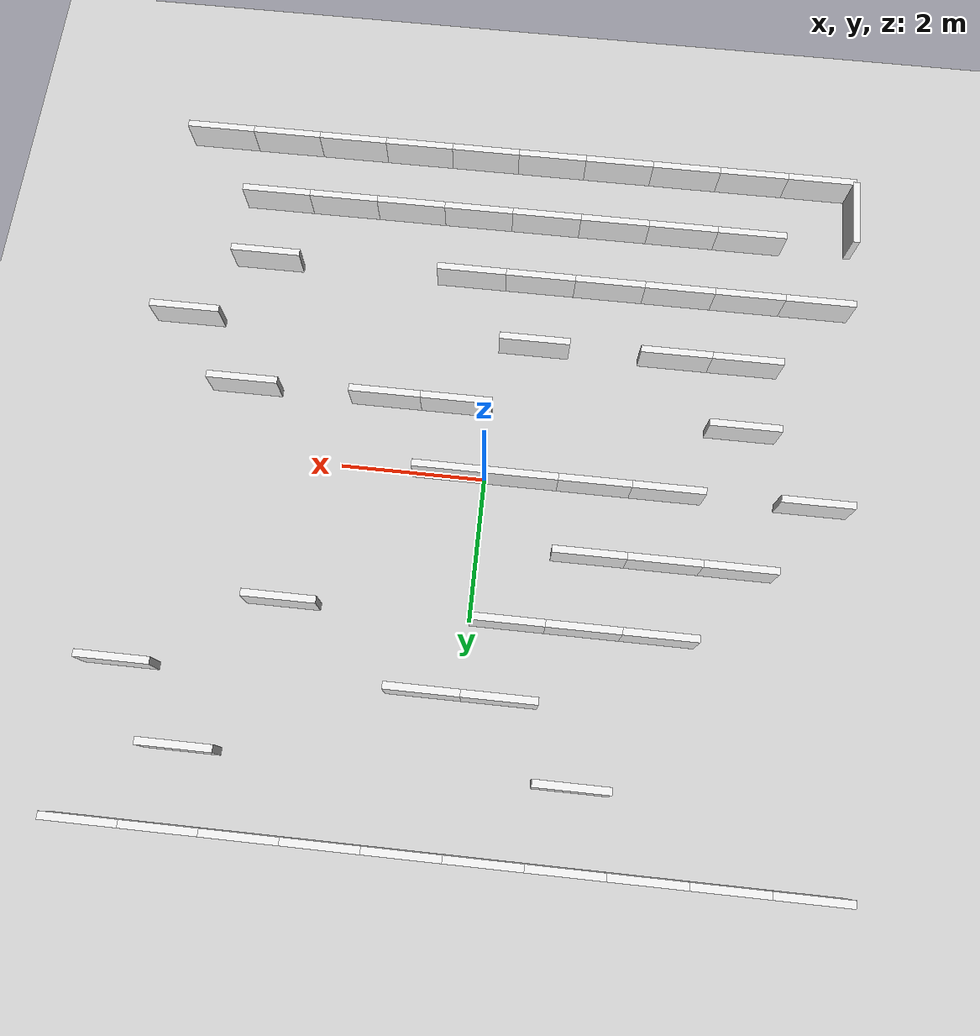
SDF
<sdf version="1.7">
 <world name="default">
  <model name="ground_plane">
   <static>1</static>
   <link name="link">
    <collision name="collision">
     <geometry><plane><normal>0 0 1</normal><size>100 100</size></plane></geometry>
     <surface><friction><ode><mu>100</mu><mu2>50</mu2></ode></friction></surface>
    </collision>
    <visual name="visual">
     <cast_shadows>0</cast_shadows>
     <geometry><plane><normal>0 0 1</normal><size>100 100</size></plane></geometry>
     <material>
      <script><uri>file://media/materials/scripts/gazebo.material</uri><name>Gazebo/Grey</name></script>
     </material>
    </visual>
   </link>
  </model>
  <model name="wall_-4.5_-5">
   <link name="wall_link_-4.5_-5">
    <collision name="wall_collision_-4.5_-5"><geometry><box><size>1 0.1 0.5</size></box></geometry></collision>
    <visual name="wall_visual_-4.5_-5">
     <geometry><box><size>1 0.1 0.5</size></box></geometry>
     <material>
      <script><uri>file://media/materials/scripts/gazebo.material</uri><name>Gazebo/White</name></script>
     </material>
    </visual>
    <pose>-4.5 -5 0.25 0 0 0</pose>
   </link>
   <static>true</static>
  </model>
  <model name="wall_-3.5_-5">
   <link name="wall_link_-3.5_-5">
    <collision name="wall_collision_-3.5_-5"><geometry><box><size>1 0.1 0.5</size></box></geometry></collision>
    <visual name="wall_visual_-3.5_-5">
     <geometry><box><size>1 0.1 0.5</size></box></geometry>
     <material>
      <script><uri>file://media/materials/scripts/gazebo.material</uri><name>Gazebo/White</name></script>
     </material>
    </visual>
    <pose>-3.5 -5 0.25 0 0 0</pose>
   </link>
   <static>true</static>
  </model>
  <model name="wall_-2.5_-5">
   <link name="wall_link_-2.5_-5">
    <collision name="wall_collision_-2.5_-5"><geometry><box><size>1 0.1 0.5</size></box></geometry></collision>
    <visual name="wall_visual_-2.5_-5">
     <geometry><box><size>1 0.1 0.5</size></box></geometry>
     <material>
      <script><uri>file://media/materials/scripts/gazebo.material</uri><name>Gazebo/White</name></script>
     </material>
    </visual>
    <pose>-2.5 -5 0.25 0 0 0</pose>
   </link>
   <static>true</static>
  </model>
  <model name="wall_-1.5_-5">
   <link name="wall_link_-1.5_-5">
    <collision name="wall_collision_-1.5_-5"><geometry><box><size>1 0.1 0.5</size></box></geometry></collision>
    <visual name="wall_visual_-1.5_-5">
     <geometry><box><size>1 0.1 0.5</size></box></geometry>
     <material>
      <script><uri>file://media/materials/scripts/gazebo.material</uri><name>Gazebo/White</name></script>
     </material>
    </visual>
    <pose>-1.5 -5 0.25 0 0 0</pose>
   </link>
   <static>true</static>
  </model>
  <model name="wall_-0.5_-5">
   <link name="wall_link_-0.5_-5">
    <collision name="wall_collision_-0.5_-5"><geometry><box><size>1 0.1 0.5</size></box></geometry></collision>
    <visual name="wall_visual_-0.5_-5">
     <geometry><box><size>1 0.1 0.5</size></box></geometry>
     <material>
      <script><uri>file://media/materials/scripts/gazebo.material</uri><name>Gazebo/White</name></script>
     </material>
    </visual>
    <pose>-0.5 -5 0.25 0 0 0</pose>
   </link>
   <static>true</static>
  </model>
  <model name="wall_0.5_-5">
   <link name="wall_link_0.5_-5">
    <collision name="wall_collision_0.5_-5"><geometry><box><size>1 0.1 0.5</size></box></geometry></collision>
    <visual name="wall_visual_0.5_-5">
     <geometry><box><size>1 0.1 0.5</size></box></geometry>
     <material>
      <script><uri>file://media/materials/scripts/gazebo.material</uri><name>Gazebo/White</name></script>
     </material>
    </visual>
    <pose>0.5 -5 0.25 0 0 0</pose>
   </link>
   <static>true</static>
  </model>
  <model name="wall_1.5_-5">
   <link name="wall_link_1.5_-5">
    <collision name="wall_collision_1.5_-5"><geometry><box><size>1 0.1 0.5</size></box></geometry></collision>
    <visual name="wall_visual_1.5_-5">
     <geometry><box><size>1 0.1 0.5</size></box></geometry>
     <material>
      <script><uri>file://media/materials/scripts/gazebo.material</uri><name>Gazebo/White</name></script>
     </material>
    </visual>
    <pose>1.5 -5 0.25 0 0 0</pose>
   </link>
   <static>true</static>
  </model>
  <model name="wall_2.5_-5">
   <link name="wall_link_2.5_-5">
    <collision name="wall_collision_2.5_-5"><geometry><box><size>1 0.1 0.5</size></box></geometry></collision>
    <visual name="wall_visual_2.5_-5">
     <geometry><box><size>1 0.1 0.5</size></box></geometry>
     <material>
      <script><uri>file://media/materials/scripts/gazebo.material</uri><name>Gazebo/White</name></script>
     </material>
    </visual>
    <pose>2.5 -5 0.25 0 0 0</pose>
   </link>
   <static>true</static>
  </model>
  <model name="wall_3.5_-5">
   <link name="wall_link_3.5_-5">
    <collision name="wall_collision_3.5_-5"><geometry><box><size>1 0.1 0.5</size></box></geometry></collision>
    <visual name="wall_visual_3.5_-5">
     <geometry><box><size>1 0.1 0.5</size></box></geometry>
     <material>
      <script><uri>file://media/materials/scripts/gazebo.material</uri><name>Gazebo/White</name></script>
     </material>
    </visual>
    <pose>3.5 -5 0.25 0 0 0</pose>
   </link>
   <static>true</static>
  </model>
  <model name="wall_4.5_-5">
   <link name="wall_link_4.5_-5">
    <collision name="wall_collision_4.5_-5"><geometry><box><size>1 0.1 0.5</size></box></geometry></collision>
    <visual name="wall_visual_4.5_-5">
     <geometry><box><size>1 0.1 0.5</size></box></geometry>
     <material>
      <script><uri>file://media/materials/scripts/gazebo.material</uri><name>Gazebo/White</name></script>
     </material>
    </visual>
    <pose>4.5 -5 0.25 0 0 0</pose>
   </link>
   <static>true</static>
  </model>
  <model name="wall_-3.5_-4">
   <link name="wall_link_-3.5_-4">
    <collision name="wall_collision_-3.5_-4"><geometry><box><size>1 0.1 0.5</size></box></geometry></collision>
    <visual name="wall_visual_-3.5_-4">
     <geometry><box><size>1 0.1 0.5</size></box></geometry>
     <material>
      <script><uri>file://media/materials/scripts/gazebo.material</uri><name>Gazebo/White</name></script>
     </material>
    </visual>
    <pose>-3.5 -4 0.25 0 0 0</pose>
   </link>
   <static>true</static>
  </model>
  <model name="wall_-2.5_-4">
   <link name="wall_link_-2.5_-4">
    <collision name="wall_collision_-2.5_-4"><geometry><box><size>1 0.1 0.5</size></box></geometry></collision>
    <visual name="wall_visual_-2.5_-4">
     <geometry><box><size>1 0.1 0.5</size></box></geometry>
     <material>
      <script><uri>file://media/materials/scripts/gazebo.material</uri><name>Gazebo/White</name></script>
     </material>
    </visual>
    <pose>-2.5 -4 0.25 0 0 0</pose>
   </link>
   <static>true</static>
  </model>
  <model name="wall_-1.5_-4">
   <link name="wall_link_-1.5_-4">
    <collision name="wall_collision_-1.5_-4"><geometry><box><size>1 0.1 0.5</size></box></geometry></collision>
    <visual name="wall_visual_-1.5_-4">
     <geometry><box><size>1 0.1 0.5</size></box></geometry>
     <material>
      <script><uri>file://media/materials/scripts/gazebo.material</uri><name>Gazebo/White</name></script>
     </material>
    </visual>
    <pose>-1.5 -4 0.25 0 0 0</pose>
   </link>
   <static>true</static>
  </model>
  <model name="wall_-0.5_-4">
   <link name="wall_link_-0.5_-4">
    <collision name="wall_collision_-0.5_-4"><geometry><box><size>1 0.1 0.5</size></box></geometry></collision>
    <visual name="wall_visual_-0.5_-4">
     <geometry><box><size>1 0.1 0.5</size></box></geometry>
     <material>
      <script><uri>file://media/materials/scripts/gazebo.material</uri><name>Gazebo/White</name></script>
     </material>
    </visual>
    <pose>-0.5 -4 0.25 0 0 0</pose>
   </link>
   <static>true</static>
  </model>
  <model name="wall_0.5_-4">
   <link name="wall_link_0.5_-4">
    <collision name="wall_collision_0.5_-4"><geometry><box><size>1 0.1 0.5</size></box></geometry></collision>
    <visual name="wall_visual_0.5_-4">
     <geometry><box><size>1 0.1 0.5</size></box></geometry>
     <material>
      <script><uri>file://media/materials/scripts/gazebo.material</uri><name>Gazebo/White</name></script>
     </material>
    </visual>
    <pose>0.5 -4 0.25 0 0 0</pose>
   </link>
   <static>true</static>
  </model>
  <model name="wall_1.5_-4">
   <link name="wall_link_1.5_-4">
    <collision name="wall_collision_1.5_-4"><geometry><box><size>1 0.1 0.5</size></box></geometry></collision>
    <visual name="wall_visual_1.5_-4">
     <geometry><box><size>1 0.1 0.5</size></box></geometry>
     <material>
      <script><uri>file://media/materials/scripts/gazebo.material</uri><name>Gazebo/White</name></script>
     </material>
    </visual>
    <pose>1.5 -4 0.25 0 0 0</pose>
   </link>
   <static>true</static>
  </model>
  <model name="wall_2.5_-4">
   <link name="wall_link_2.5_-4">
    <collision name="wall_collision_2.5_-4"><geometry><box><size>1 0.1 0.5</size></box></geometry></collision>
    <visual name="wall_visual_2.5_-4">
     <geometry><box><size>1 0.1 0.5</size></box></geometry>
     <material>
      <script><uri>file://media/materials/scripts/gazebo.material</uri><name>Gazebo/White</name></script>
     </material>
    </visual>
    <pose>2.5 -4 0.25 0 0 0</pose>
   </link>
   <static>true</static>
  </model>
  <model name="wall_3.5_-4">
   <link name="wall_link_3.5_-4">
    <collision name="wall_collision_3.5_-4"><geometry><box><size>1 0.1 0.5</size></box></geometry></collision>
    <visual name="wall_visual_3.5_-4">
     <geometry><box><size>1 0.1 0.5</size></box></geometry>
     <material>
      <script><uri>file://media/materials/scripts/gazebo.material</uri><name>Gazebo/White</name></script>
     </material>
    </visual>
    <pose>3.5 -4 0.25 0 0 0</pose>
   </link>
   <static>true</static>
  </model>
  <model name="wall_-4.5_-3">
   <link name="wall_link_-4.5_-3">
    <collision name="wall_collision_-4.5_-3"><geometry><box><size>1 0.1 0.5</size></box></geometry></collision>
    <visual name="wall_visual_-4.5_-3">
     <geometry><box><size>1 0.1 0.5</size></box></geometry>
     <material>
      <script><uri>file://media/materials/scripts/gazebo.material</uri><name>Gazebo/White</name></script>
     </material>
    </visual>
    <pose>-4.5 -3 0.25 0 0 0</pose>
   </link>
   <static>true</static>
  </model>
  <model name="wall_-3.5_-3">
   <link name="wall_link_-3.5_-3">
    <collision name="wall_collision_-3.5_-3"><geometry><box><size>1 0.1 0.5</size></box></geometry></collision>
    <visual name="wall_visual_-3.5_-3">
     <geometry><box><size>1 0.1 0.5</size></box></geometry>
     <material>
      <script><uri>file://media/materials/scripts/gazebo.material</uri><name>Gazebo/White</name></script>
     </material>
    </visual>
    <pose>-3.5 -3 0.25 0 0 0</pose>
   </link>
   <static>true</static>
  </model>
  <model name="wall_-2.5_-3">
   <link name="wall_link_-2.5_-3">
    <collision name="wall_collision_-2.5_-3"><geometry><box><size>1 0.1 0.5</size></box></geometry></collision>
    <visual name="wall_visual_-2.5_-3">
     <geometry><box><size>1 0.1 0.5</size></box></geometry>
     <material>
      <script><uri>file://media/materials/scripts/gazebo.material</uri><name>Gazebo/White</name></script>
     </material>
    </visual>
    <pose>-2.5 -3 0.25 0 0 0</pose>
   </link>
   <static>true</static>
  </model>
  <model name="wall_-1.5_-3">
   <link name="wall_link_-1.5_-3">
    <collision name="wall_collision_-1.5_-3"><geometry><box><size>1 0.1 0.5</size></box></geometry></collision>
    <visual name="wall_visual_-1.5_-3">
     <geometry><box><size>1 0.1 0.5</size></box></geometry>
     <material>
      <script><uri>file://media/materials/scripts/gazebo.material</uri><name>Gazebo/White</name></script>
     </material>
    </visual>
    <pose>-1.5 -3 0.25 0 0 0</pose>
   </link>
   <static>true</static>
  </model>
  <model name="wall_-0.5_-3">
   <link name="wall_link_-0.5_-3">
    <collision name="wall_collision_-0.5_-3"><geometry><box><size>1 0.1 0.5</size></box></geometry></collision>
    <visual name="wall_visual_-0.5_-3">
     <geometry><box><size>1 0.1 0.5</size></box></geometry>
     <material>
      <script><uri>file://media/materials/scripts/gazebo.material</uri><name>Gazebo/White</name></script>
     </material>
    </visual>
    <pose>-0.5 -3 0.25 0 0 0</pose>
   </link>
   <static>true</static>
  </model>
  <model name="wall_0.5_-3">
   <link name="wall_link_0.5_-3">
    <collision name="wall_collision_0.5_-3"><geometry><box><size>1 0.1 0.5</size></box></geometry></collision>
    <visual name="wall_visual_0.5_-3">
     <geometry><box><size>1 0.1 0.5</size></box></geometry>
     <material>
      <script><uri>file://media/materials/scripts/gazebo.material</uri><name>Gazebo/White</name></script>
     </material>
    </visual>
    <pose>0.5 -3 0.25 0 0 0</pose>
   </link>
   <static>true</static>
  </model>
  <model name="wall_3.5_-3">
   <link name="wall_link_3.5_-3">
    <collision name="wall_collision_3.5_-3"><geometry><box><size>1 0.1 0.5</size></box></geometry></collision>
    <visual name="wall_visual_3.5_-3">
     <geometry><box><size>1 0.1 0.5</size></box></geometry>
     <material>
      <script><uri>file://media/materials/scripts/gazebo.material</uri><name>Gazebo/White</name></script>
     </material>
    </visual>
    <pose>3.5 -3 0.25 0 0 0</pose>
   </link>
   <static>true</static>
  </model>
  <model name="wall_-3.5_-2">
   <link name="wall_link_-3.5_-2">
    <collision name="wall_collision_-3.5_-2"><geometry><box><size>1 0.1 0.5</size></box></geometry></collision>
    <visual name="wall_visual_-3.5_-2">
     <geometry><box><size>1 0.1 0.5</size></box></geometry>
     <material>
      <script><uri>file://media/materials/scripts/gazebo.material</uri><name>Gazebo/White</name></script>
     </material>
    </visual>
    <pose>-3.5 -2 0.25 0 0 0</pose>
   </link>
   <static>true</static>
  </model>
  <model name="wall_-2.5_-2">
   <link name="wall_link_-2.5_-2">
    <collision name="wall_collision_-2.5_-2"><geometry><box><size>1 0.1 0.5</size></box></geometry></collision>
    <visual name="wall_visual_-2.5_-2">
     <geometry><box><size>1 0.1 0.5</size></box></geometry>
     <material>
      <script><uri>file://media/materials/scripts/gazebo.material</uri><name>Gazebo/White</name></script>
     </material>
    </visual>
    <pose>-2.5 -2 0.25 0 0 0</pose>
   </link>
   <static>true</static>
  </model>
  <model name="wall_-0.5_-2">
   <link name="wall_link_-0.5_-2">
    <collision name="wall_collision_-0.5_-2"><geometry><box><size>1 0.1 0.5</size></box></geometry></collision>
    <visual name="wall_visual_-0.5_-2">
     <geometry><box><size>1 0.1 0.5</size></box></geometry>
     <material>
      <script><uri>file://media/materials/scripts/gazebo.material</uri><name>Gazebo/White</name></script>
     </material>
    </visual>
    <pose>-0.5 -2 0.25 0 0 0</pose>
   </link>
   <static>true</static>
  </model>
  <model name="wall_4.5_-2">
   <link name="wall_link_4.5_-2">
    <collision name="wall_collision_4.5_-2"><geometry><box><size>1 0.1 0.5</size></box></geometry></collision>
    <visual name="wall_visual_4.5_-2">
     <geometry><box><size>1 0.1 0.5</size></box></geometry>
     <material>
      <script><uri>file://media/materials/scripts/gazebo.material</uri><name>Gazebo/White</name></script>
     </material>
    </visual>
    <pose>4.5 -2 0.25 0 0 0</pose>
   </link>
   <static>true</static>
  </model>
  <model name="wall_-3.5_-1">
   <link name="wall_link_-3.5_-1">
    <collision name="wall_collision_-3.5_-1"><geometry><box><size>1 0.1 0.5</size></box></geometry></collision>
    <visual name="wall_visual_-3.5_-1">
     <geometry><box><size>1 0.1 0.5</size></box></geometry>
     <material>
      <script><uri>file://media/materials/scripts/gazebo.material</uri><name>Gazebo/White</name></script>
     </material>
    </visual>
    <pose>-3.5 -1 0.25 0 0 0</pose>
   </link>
   <static>true</static>
  </model>
  <model name="wall_0.5_-1">
   <link name="wall_link_0.5_-1">
    <collision name="wall_collision_0.5_-1"><geometry><box><size>1 0.1 0.5</size></box></geometry></collision>
    <visual name="wall_visual_0.5_-1">
     <geometry><box><size>1 0.1 0.5</size></box></geometry>
     <material>
      <script><uri>file://media/materials/scripts/gazebo.material</uri><name>Gazebo/White</name></script>
     </material>
    </visual>
    <pose>0.5 -1 0.25 0 0 0</pose>
   </link>
   <static>true</static>
  </model>
  <model name="wall_1.5_-1">
   <link name="wall_link_1.5_-1">
    <collision name="wall_collision_1.5_-1"><geometry><box><size>1 0.1 0.5</size></box></geometry></collision>
    <visual name="wall_visual_1.5_-1">
     <geometry><box><size>1 0.1 0.5</size></box></geometry>
     <material>
      <script><uri>file://media/materials/scripts/gazebo.material</uri><name>Gazebo/White</name></script>
     </material>
    </visual>
    <pose>1.5 -1 0.25 0 0 0</pose>
   </link>
   <static>true</static>
  </model>
  <model name="wall_3.5_-1">
   <link name="wall_link_3.5_-1">
    <collision name="wall_collision_3.5_-1"><geometry><box><size>1 0.1 0.5</size></box></geometry></collision>
    <visual name="wall_visual_3.5_-1">
     <geometry><box><size>1 0.1 0.5</size></box></geometry>
     <material>
      <script><uri>file://media/materials/scripts/gazebo.material</uri><name>Gazebo/White</name></script>
     </material>
    </visual>
    <pose>3.5 -1 0.25 0 0 0</pose>
   </link>
   <static>true</static>
  </model>
  <model name="wall_-4.5_0">
   <link name="wall_link_-4.5_0">
    <collision name="wall_collision_-4.5_0"><geometry><box><size>1 0.1 0.5</size></box></geometry></collision>
    <visual name="wall_visual_-4.5_0">
     <geometry><box><size>1 0.1 0.5</size></box></geometry>
     <material>
      <script><uri>file://media/materials/scripts/gazebo.material</uri><name>Gazebo/White</name></script>
     </material>
    </visual>
    <pose>-4.5 0 0.25 0 0 0</pose>
   </link>
   <static>true</static>
  </model>
  <model name="wall_-2.5_0">
   <link name="wall_link_-2.5_0">
    <collision name="wall_collision_-2.5_0"><geometry><box><size>1 0.1 0.5</size></box></geometry></collision>
    <visual name="wall_visual_-2.5_0">
     <geometry><box><size>1 0.1 0.5</size></box></geometry>
     <material>
      <script><uri>file://media/materials/scripts/gazebo.material</uri><name>Gazebo/White</name></script>
     </material>
    </visual>
    <pose>-2.5 0 0.25 0 0 0</pose>
   </link>
   <static>true</static>
  </model>
  <model name="wall_-1.5_0">
   <link name="wall_link_-1.5_0">
    <collision name="wall_collision_-1.5_0"><geometry><box><size>1 0.1 0.5</size></box></geometry></collision>
    <visual name="wall_visual_-1.5_0">
     <geometry><box><size>1 0.1 0.5</size></box></geometry>
     <material>
      <script><uri>file://media/materials/scripts/gazebo.material</uri><name>Gazebo/White</name></script>
     </material>
    </visual>
    <pose>-1.5 0 0.25 0 0 0</pose>
   </link>
   <static>true</static>
  </model>
  <model name="wall_-0.5_0">
   <link name="wall_link_-0.5_0">
    <collision name="wall_collision_-0.5_0"><geometry><box><size>1 0.1 0.5</size></box></geometry></collision>
    <visual name="wall_visual_-0.5_0">
     <geometry><box><size>1 0.1 0.5</size></box></geometry>
     <material>
      <script><uri>file://media/materials/scripts/gazebo.material</uri><name>Gazebo/White</name></script>
     </material>
    </visual>
    <pose>-0.5 0 0.25 0 0 0</pose>
   </link>
   <static>true</static>
  </model>
  <model name="wall_0.5_0">
   <link name="wall_link_0.5_0">
    <collision name="wall_collision_0.5_0"><geometry><box><size>1 0.1 0.5</size></box></geometry></collision>
    <visual name="wall_visual_0.5_0">
     <geometry><box><size>1 0.1 0.5</size></box></geometry>
     <material>
      <script><uri>file://media/materials/scripts/gazebo.material</uri><name>Gazebo/White</name></script>
     </material>
    </visual>
    <pose>0.5 0 0.25 0 0 0</pose>
   </link>
   <static>true</static>
  </model>
  <model name="wall_-3.5_1">
   <link name="wall_link_-3.5_1">
    <collision name="wall_collision_-3.5_1"><geometry><box><size>1 0.1 0.5</size></box></geometry></collision>
    <visual name="wall_visual_-3.5_1">
     <geometry><box><size>1 0.1 0.5</size></box></geometry>
     <material>
      <script><uri>file://media/materials/scripts/gazebo.material</uri><name>Gazebo/White</name></script>
     </material>
    </visual>
    <pose>-3.5 1 0.25 0 0 0</pose>
   </link>
   <static>true</static>
  </model>
  <model name="wall_-2.5_1">
   <link name="wall_link_-2.5_1">
    <collision name="wall_collision_-2.5_1"><geometry><box><size>1 0.1 0.5</size></box></geometry></collision>
    <visual name="wall_visual_-2.5_1">
     <geometry><box><size>1 0.1 0.5</size></box></geometry>
     <material>
      <script><uri>file://media/materials/scripts/gazebo.material</uri><name>Gazebo/White</name></script>
     </material>
    </visual>
    <pose>-2.5 1 0.25 0 0 0</pose>
   </link>
   <static>true</static>
  </model>
  <model name="wall_-1.5_1">
   <link name="wall_link_-1.5_1">
    <collision name="wall_collision_-1.5_1"><geometry><box><size>1 0.1 0.5</size></box></geometry></collision>
    <visual name="wall_visual_-1.5_1">
     <geometry><box><size>1 0.1 0.5</size></box></geometry>
     <material>
      <script><uri>file://media/materials/scripts/gazebo.material</uri><name>Gazebo/White</name></script>
     </material>
    </visual>
    <pose>-1.5 1 0.25 0 0 0</pose>
   </link>
   <static>true</static>
  </model>
  <model name="wall_-2.5_2">
   <link name="wall_link_-2.5_2">
    <collision name="wall_collision_-2.5_2"><geometry><box><size>1 0.1 0.5</size></box></geometry></collision>
    <visual name="wall_visual_-2.5_2">
     <geometry><box><size>1 0.1 0.5</size></box></geometry>
     <material>
      <script><uri>file://media/materials/scripts/gazebo.material</uri><name>Gazebo/White</name></script>
     </material>
    </visual>
    <pose>-2.5 2 0.25 0 0 0</pose>
   </link>
   <static>true</static>
  </model>
  <model name="wall_-1.5_2">
   <link name="wall_link_-1.5_2">
    <collision name="wall_collision_-1.5_2"><geometry><box><size>1 0.1 0.5</size></box></geometry></collision>
    <visual name="wall_visual_-1.5_2">
     <geometry><box><size>1 0.1 0.5</size></box></geometry>
     <material>
      <script><uri>file://media/materials/scripts/gazebo.material</uri><name>Gazebo/White</name></script>
     </material>
    </visual>
    <pose>-1.5 2 0.25 0 0 0</pose>
   </link>
   <static>true</static>
  </model>
  <model name="wall_-0.5_2">
   <link name="wall_link_-0.5_2">
    <collision name="wall_collision_-0.5_2"><geometry><box><size>1 0.1 0.5</size></box></geometry></collision>
    <visual name="wall_visual_-0.5_2">
     <geometry><box><size>1 0.1 0.5</size></box></geometry>
     <material>
      <script><uri>file://media/materials/scripts/gazebo.material</uri><name>Gazebo/White</name></script>
     </material>
    </visual>
    <pose>-0.5 2 0.25 0 0 0</pose>
   </link>
   <static>true</static>
  </model>
  <model name="wall_2.5_2">
   <link name="wall_link_2.5_2">
    <collision name="wall_collision_2.5_2"><geometry><box><size>1 0.1 0.5</size></box></geometry></collision>
    <visual name="wall_visual_2.5_2">
     <geometry><box><size>1 0.1 0.5</size></box></geometry>
     <material>
      <script><uri>file://media/materials/scripts/gazebo.material</uri><name>Gazebo/White</name></script>
     </material>
    </visual>
    <pose>2.5 2 0.25 0 0 0</pose>
   </link>
   <static>true</static>
  </model>
  <model name="wall_-0.5_3">
   <link name="wall_link_-0.5_3">
    <collision name="wall_collision_-0.5_3"><geometry><box><size>1 0.1 0.5</size></box></geometry></collision>
    <visual name="wall_visual_-0.5_3">
     <geometry><box><size>1 0.1 0.5</size></box></geometry>
     <material>
      <script><uri>file://media/materials/scripts/gazebo.material</uri><name>Gazebo/White</name></script>
     </material>
    </visual>
    <pose>-0.5 3 0.25 0 0 0</pose>
   </link>
   <static>true</static>
  </model>
  <model name="wall_0.5_3">
   <link name="wall_link_0.5_3">
    <collision name="wall_collision_0.5_3"><geometry><box><size>1 0.1 0.5</size></box></geometry></collision>
    <visual name="wall_visual_0.5_3">
     <geometry><box><size>1 0.1 0.5</size></box></geometry>
     <material>
      <script><uri>file://media/materials/scripts/gazebo.material</uri><name>Gazebo/White</name></script>
     </material>
    </visual>
    <pose>0.5 3 0.25 0 0 0</pose>
   </link>
   <static>true</static>
  </model>
  <model name="wall_4.5_3">
   <link name="wall_link_4.5_3">
    <collision name="wall_collision_4.5_3"><geometry><box><size>1 0.1 0.5</size></box></geometry></collision>
    <visual name="wall_visual_4.5_3">
     <geometry><box><size>1 0.1 0.5</size></box></geometry>
     <material>
      <script><uri>file://media/materials/scripts/gazebo.material</uri><name>Gazebo/White</name></script>
     </material>
    </visual>
    <pose>4.5 3 0.25 0 0 0</pose>
   </link>
   <static>true</static>
  </model>
  <model name="wall_-1.5_4">
   <link name="wall_link_-1.5_4">
    <collision name="wall_collision_-1.5_4"><geometry><box><size>1 0.1 0.5</size></box></geometry></collision>
    <visual name="wall_visual_-1.5_4">
     <geometry><box><size>1 0.1 0.5</size></box></geometry>
     <material>
      <script><uri>file://media/materials/scripts/gazebo.material</uri><name>Gazebo/White</name></script>
     </material>
    </visual>
    <pose>-1.5 4 0.25 0 0 0</pose>
   </link>
   <static>true</static>
  </model>
  <model name="wall_3.5_4">
   <link name="wall_link_3.5_4">
    <collision name="wall_collision_3.5_4"><geometry><box><size>1 0.1 0.5</size></box></geometry></collision>
    <visual name="wall_visual_3.5_4">
     <geometry><box><size>1 0.1 0.5</size></box></geometry>
     <material>
      <script><uri>file://media/materials/scripts/gazebo.material</uri><name>Gazebo/White</name></script>
     </material>
    </visual>
    <pose>3.5 4 0.25 0 0 0</pose>
   </link>
   <static>true</static>
  </model>
  <model name="wall_-4.5_5">
   <link name="wall_link_-4.5_5">
    <collision name="wall_collision_-4.5_5"><geometry><box><size>1 0.1 0.5</size></box></geometry></collision>
    <visual name="wall_visual_-4.5_5">
     <geometry><box><size>1 0.1 0.5</size></box></geometry>
     <material>
      <script><uri>file://media/materials/scripts/gazebo.material</uri><name>Gazebo/White</name></script>
     </material>
    </visual>
    <pose>-4.5 5 0.25 0 0 0</pose>
   </link>
   <static>true</static>
  </model>
  <model name="wall_-3.5_5">
   <link name="wall_link_-3.5_5">
    <collision name="wall_collision_-3.5_5"><geometry><box><size>1 0.1 0.5</size></box></geometry></collision>
    <visual name="wall_visual_-3.5_5">
     <geometry><box><size>1 0.1 0.5</size></box></geometry>
     <material>
      <script><uri>file://media/materials/scripts/gazebo.material</uri><name>Gazebo/White</name></script>
     </material>
    </visual>
    <pose>-3.5 5 0.25 0 0 0</pose>
   </link>
   <static>true</static>
  </model>
  <model name="wall_-2.5_5">
   <link name="wall_link_-2.5_5">
    <collision name="wall_collision_-2.5_5"><geometry><box><size>1 0.1 0.5</size></box></geometry></collision>
    <visual name="wall_visual_-2.5_5">
     <geometry><box><size>1 0.1 0.5</size></box></geometry>
     <material>
      <script><uri>file://media/materials/scripts/gazebo.material</uri><name>Gazebo/White</name></script>
     </material>
    </visual>
    <pose>-2.5 5 0.25 0 0 0</pose>
   </link>
   <static>true</static>
  </model>
  <model name="wall_-1.5_5">
   <link name="wall_link_-1.5_5">
    <collision name="wall_collision_-1.5_5"><geometry><box><size>1 0.1 0.5</size></box></geometry></collision>
    <visual name="wall_visual_-1.5_5">
     <geometry><box><size>1 0.1 0.5</size></box></geometry>
     <material>
      <script><uri>file://media/materials/scripts/gazebo.material</uri><name>Gazebo/White</name></script>
     </material>
    </visual>
    <pose>-1.5 5 0.25 0 0 0</pose>
   </link>
   <static>true</static>
  </model>
  <model name="wall_-0.5_5">
   <link name="wall_link_-0.5_5">
    <collision name="wall_collision_-0.5_5"><geometry><box><size>1 0.1 0.5</size></box></geometry></collision>
    <visual name="wall_visual_-0.5_5">
     <geometry><box><size>1 0.1 0.5</size></box></geometry>
     <material>
      <script><uri>file://media/materials/scripts/gazebo.material</uri><name>Gazebo/White</name></script>
     </material>
    </visual>
    <pose>-0.5 5 0.25 0 0 0</pose>
   </link>
   <static>true</static>
  </model>
  <model name="wall_0.5_5">
   <link name="wall_link_0.5_5">
    <collision name="wall_collision_0.5_5"><geometry><box><size>1 0.1 0.5</size></box></geometry></collision>
    <visual name="wall_visual_0.5_5">
     <geometry><box><size>1 0.1 0.5</size></box></geometry>
     <material>
      <script><uri>file://media/materials/scripts/gazebo.material</uri><name>Gazebo/White</name></script>
     </material>
    </visual>
    <pose>0.5 5 0.25 0 0 0</pose>
   </link>
   <static>true</static>
  </model>
  <model name="wall_1.5_5">
   <link name="wall_link_1.5_5">
    <collision name="wall_collision_1.5_5"><geometry><box><size>1 0.1 0.5</size></box></geometry></collision>
    <visual name="wall_visual_1.5_5">
     <geometry><box><size>1 0.1 0.5</size></box></geometry>
     <material>
      <script><uri>file://media/materials/scripts/gazebo.material</uri><name>Gazebo/White</name></script>
     </material>
    </visual>
    <pose>1.5 5 0.25 0 0 0</pose>
   </link>
   <static>true</static>
  </model>
  <model name="wall_2.5_5">
   <link name="wall_link_2.5_5">
    <collision name="wall_collision_2.5_5"><geometry><box><size>1 0.1 0.5</size></box></geometry></collision>
    <visual name="wall_visual_2.5_5">
     <geometry><box><size>1 0.1 0.5</size></box></geometry>
     <material>
      <script><uri>file://media/materials/scripts/gazebo.material</uri><name>Gazebo/White</name></script>
     </material>
    </visual>
    <pose>2.5 5 0.25 0 0 0</pose>
   </link>
   <static>true</static>
  </model>
  <model name="wall_3.5_5">
   <link name="wall_link_3.5_5">
    <collision name="wall_collision_3.5_5"><geometry><box><size>1 0.1 0.5</size></box></geometry></collision>
    <visual name="wall_visual_3.5_5">
     <geometry><box><size>1 0.1 0.5</size></box></geometry>
     <material>
      <script><uri>file://media/materials/scripts/gazebo.material</uri><name>Gazebo/White</name></script>
     </material>
    </visual>
    <pose>3.5 5 0.25 0 0 0</pose>
   </link>
   <static>true</static>
  </model>
  <model name="wall_4.5_5">
   <link name="wall_link_4.5_5">
    <collision name="wall_collision_4.5_5"><geometry><box><size>1 0.1 0.5</size></box></geometry></collision>
    <visual name="wall_visual_4.5_5">
     <geometry><box><size>1 0.1 0.5</size></box></geometry>
     <material>
      <script><uri>file://media/materials/scripts/gazebo.material</uri><name>Gazebo/White</name></script>
     </material>
    </visual>
    <pose>4.5 5 0.25 0 0 0</pose>
   </link>
   <static>true</static>
  </model>
  <model name="wall_-5_-4.5">
   <link name="wall_link_-5_-4.5">
    <collision name="wall_collision_-5_-4.5"><geometry><box><size>1 0.1 0.5</size></box></geometry></collision>
    <visual name="wall_visual_-5_-4.5">
     <geometry><box><size>1 0.1 0.5</size></box></geometry>
     <material>
      <script><uri>file://media/materials/scripts/gazebo.material</uri><name>Gazebo/White</name></script>
     </material>
    </visual>
    <pose>-5 -4.5 0.25 0 0 1.5707963267948966</pose>
   </link>
   <static>true</static>
  </model>
 </world>
</sdf>
